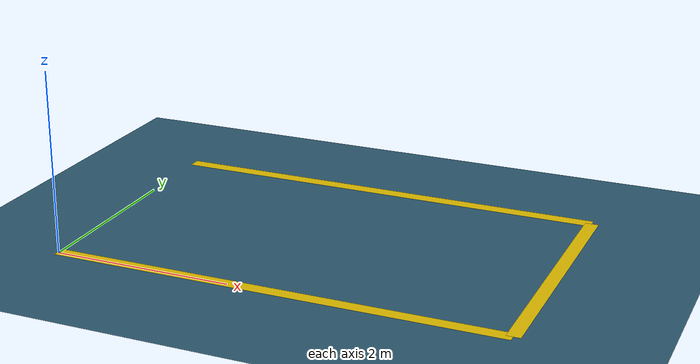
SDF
<?xml version="1.0" ?>
<sdf version="1.6">
  <world name="tema1_hat_takibi_world">
    <!-- Directional Light mimicking underwater sunlight -->
    <include>
      <uri>model://sun</uri>
    </include>

    <!-- Underwater ambient atmosphere parameters -->
    <scene>
      <ambient>0.1 0.3 0.4 1.0</ambient>
      <background>0.05 0.15 0.25 1.0</background>
      <shadows>true</shadows>
      <fog>
        <color>0.05 0.2 0.3 1.0</color>
        <type>linear</type>
        <start>1.0</start>
        <end>15.0</end>
        <density>0.1</density>
      </fog>
    </scene>

    <!-- Pool / Ocean Floor Ground Plane -->
    <model name="pool_ground">
      <static>true</static>
      <link name="link">
        <collision name="collision">
          <geometry>
            <plane>
              <normal>0 0 1</normal>
              <size>30 30</size>
            </plane>
          </geometry>
          <surface>
            <friction>
              <ode>
                <mu>100</mu>
                <mu2>50</mu2>
              </ode>
            </friction>
          </surface>
        </collision>
        <visual name="visual">
          <cast_shadows>false</cast_shadows>
          <geometry>
            <plane>
              <normal>0 0 1</normal>
              <size>30 30</size>
            </plane>
          </geometry>
          <material>
            <ambient>0.2 0.4 0.5 1</ambient>
            <diffuse>0.2 0.4 0.5 1</diffuse>
          </material>
        </visual>
      </link>
    </model>

    <!-- Yellow Line Path for Underwater Tracking (tema1_hat_takibi) -->
    <model name="underwater_yellow_line_path">
      <static>true</static>
      <pose>0 0 0.01 0 0 0</pose> <!-- Slightly elevated off pool floor -->
      <!-- Segment 1: Main Straight Line -->
      <link name="segment_1">
        <visual name="visual_seg1">
          <pose>2.5 0 0 0 0 0</pose>
          <geometry>
            <box>
              <size>5.0 0.15 0.002</size>
            </box>
          </geometry>
          <material>
            <ambient>1.0 0.84 0.0 1</ambient>
            <diffuse>1.0 0.84 0.0 1</diffuse>
            <emissive>0.2 0.2 0.0 1</emissive>
          </material>
        </visual>
      </link>
      <!-- Segment 2: Curved Path / Corner -->
      <link name="segment_2">
        <visual name="visual_seg2">
          <pose>5.0 1.5 0 0 0 1.5708</pose>
          <geometry>
            <box>
              <size>3.0 0.15 0.002</size>
            </box>
          </geometry>
          <material>
            <ambient>1.0 0.84 0.0 1</ambient>
            <diffuse>1.0 0.84 0.0 1</diffuse>
            <emissive>0.2 0.2 0.0 1</emissive>
          </material>
        </visual>
      </link>
      <!-- Segment 3: Return Path -->
      <link name="segment_3">
        <visual name="visual_seg3">
          <pose>2.5 3.0 0 0 0 3.14159</pose>
          <geometry>
            <box>
              <size>5.0 0.15 0.002</size>
            </box>
          </geometry>
          <material>
            <ambient>1.0 0.84 0.0 1</ambient>
            <diffuse>1.0 0.84 0.0 1</diffuse>
            <emissive>0.2 0.2 0.0 1</emissive>
          </material>
        </visual>
      </link>
    </model>

    <!-- Physics Parameters -->
    <physics type="ode">
      <max_step_size>0.004</max_step_size>
      <real_time_factor>1.0</real_time_factor>
      <real_time_update_rate>250</real_time_update_rate>
    </physics>

  </world>
</sdf>
